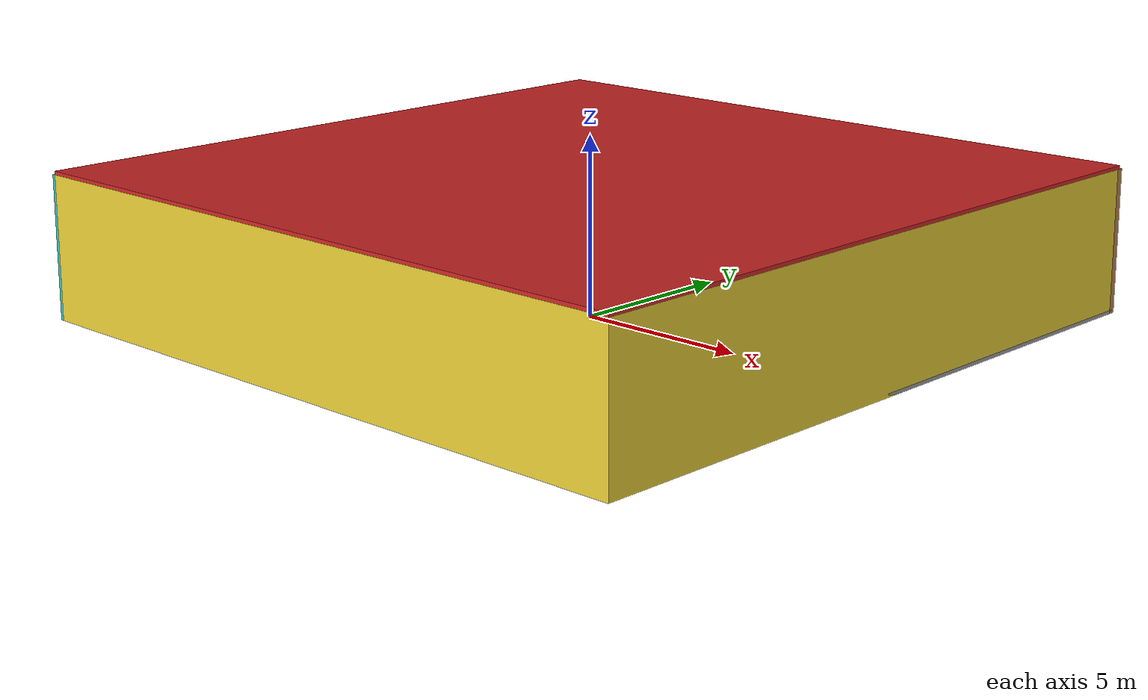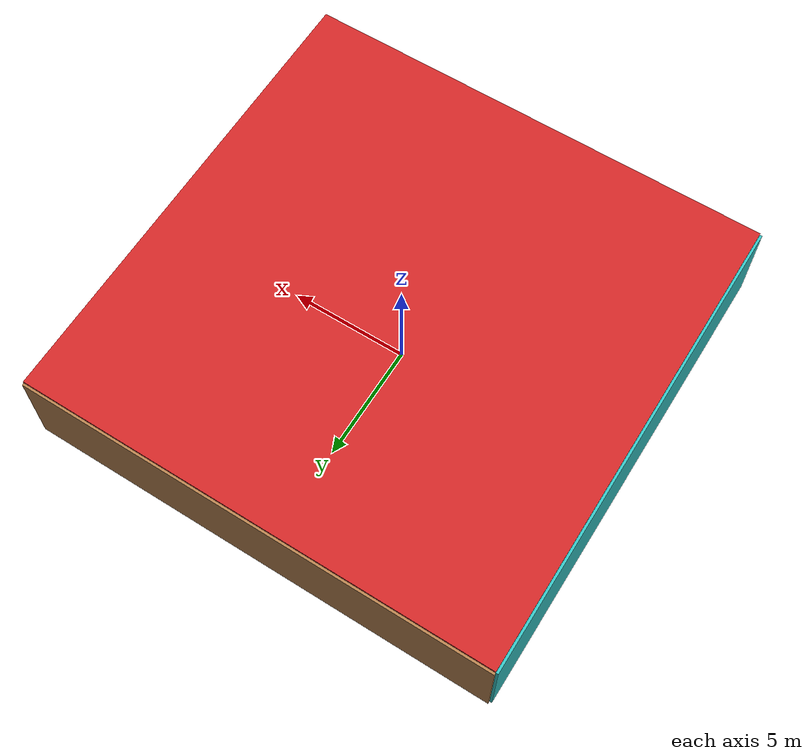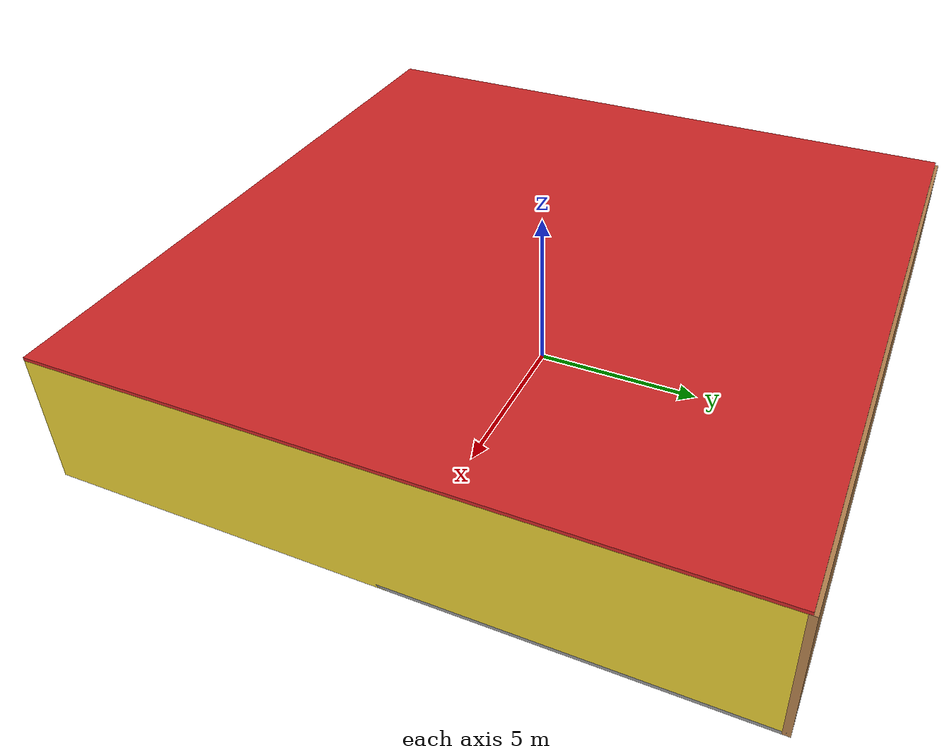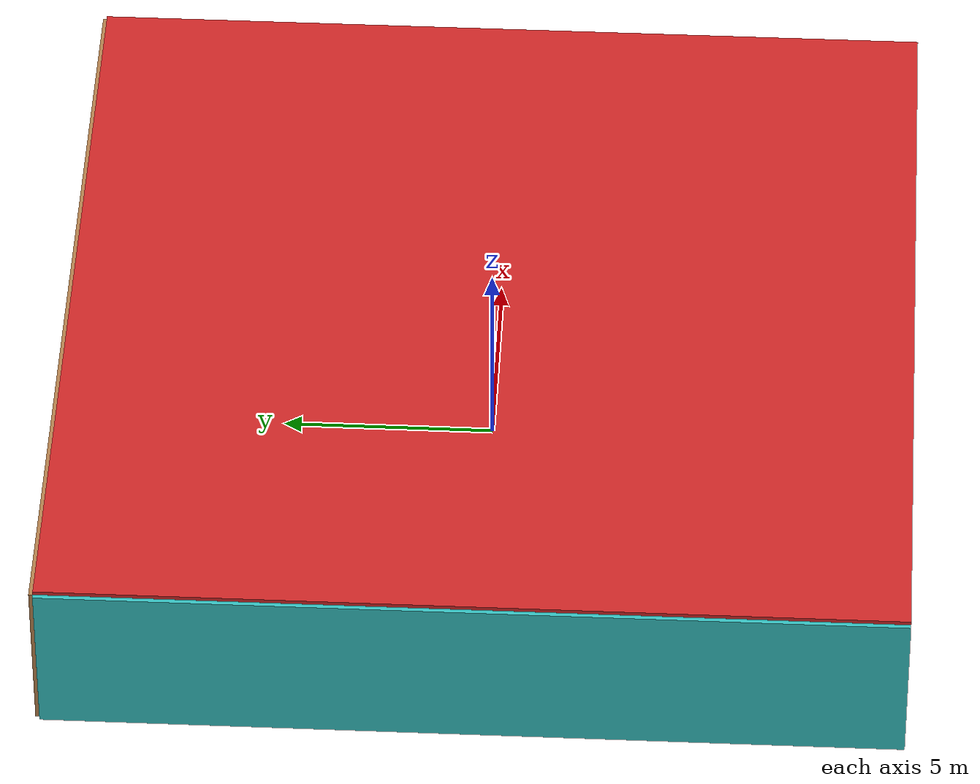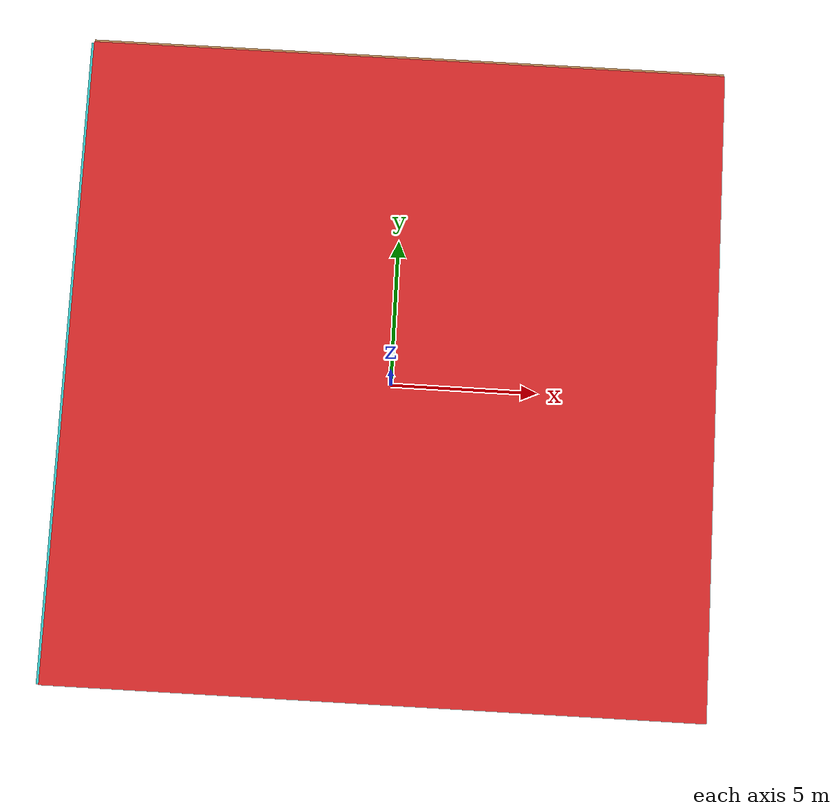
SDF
<sdf version="1.4">
 <world name="default">
  <physics type="ode">
   <max_step_size>0.001</max_step_size>
   <real_time_factor>1</real_time_factor>
   <real_time_update_rate>1000</real_time_update_rate>
   <gravity>0 0 -9.8</gravity>
  </physics>
  <scene><ambient>0.4 0.4 0.4 1</ambient><background>0.7 0.7 0.7 1</background><shadows>1</shadows></scene>
  <model name="Surrounding">
   <static>1</static>
   <link name="Ceiling">
    <collision name="Ceiling_Collision"><geometry><box><size>20 20 0.1</size></box></geometry></collision>
    <visual name="Ceiling_Visual">
     <geometry><box><size>20 20 0.1</size></box></geometry>
     <material>
      <script><uri>file://media/materials/scripts/gazebo.material</uri><name>Gazebo/Red</name></script>
     </material>
    </visual>
    <pose>0 0 4.05 0 0 0</pose>
   </link>
   <link name="Wall_South">
    <collision name="Wall_South_Collision">
     <geometry><box><size>20 0 4</size></box></geometry>
     <pose>0 0 2 0 -0 0</pose>
    </collision>
    <visual name="Wall_South_Visual">
     <pose>0 0 2 0 -0 0</pose>
     <geometry><box><size>20 0 4</size></box></geometry>
     <material>
      <script><uri>file://media/materials/scripts/gazebo.material</uri><name>Gazebo/ZincYellow</name></script>
     </material>
    </visual>
    <velocity_decay><linear>0</linear><angular>0</angular></velocity_decay>
    <pose>0 -10 0 0 -0 0</pose>
   </link>
   <link name="Wall_East">
    <collision name="Wall_21_Collision">
     <geometry><box><size>20 0 4</size></box></geometry>
     <pose>0 0 2 0 -0 0</pose>
    </collision>
    <visual name="Wall_21_Visual">
     <pose>0 0 2 0 -0 0</pose>
     <geometry><box><size>20 0 4</size></box></geometry>
     <material>
      <script><uri>file://media/materials/scripts/gazebo.material</uri><name>Gazebo/ZincYellow</name></script>
     </material>
    </visual>
    <velocity_decay><linear>0</linear><angular>0</angular></velocity_decay>
    <pose>10 0 0 0 -0 1.5708</pose>
   </link>
   <link name="Wall_North">
    <collision name="Wall_22_Collision">
     <geometry><box><size>20 0.2 4</size></box></geometry>
     <pose>0 0 2 0 -0 0</pose>
    </collision>
    <visual name="Wall_22_Visual">
     <pose>0 0 2 0 -0 0</pose>
     <geometry><box><size>20 0.2 4</size></box></geometry>
     <material>
      <script><uri>file://media/materials/scripts/gazebo.material</uri><name>Gazebo/WoodPallet</name></script>
     </material>
    </visual>
    <velocity_decay><linear>0</linear><angular>0</angular></velocity_decay>
    <pose>0 10 0 0 -0 0</pose>
   </link>
   <link name="Wall_West">
    <collision name="Wall_23_Collision">
     <geometry><box><size>20 0.2 4</size></box></geometry>
     <pose>0 0 2 0 -0 0</pose>
    </collision>
    <visual name="Wall_23_Visual">
     <pose>0 0 2 0 -0 0</pose>
     <geometry><box><size>20 0.2 4</size></box></geometry>
     <material>
      <script><uri>file://media/materials/scripts/gazebo.material</uri><name>Gazebo/Turquoise</name></script>
     </material>
    </visual>
    <velocity_decay><linear>0</linear><angular>0</angular></velocity_decay>
    <pose>-10 0 0 0 0 -1.5708</pose>
   </link>
   <link name="Ground_link">
    <collision name="collision">
     <pose>0 0 .05 0 -0 0</pose>
     <geometry><box><size>20 20 0.1</size></box></geometry>
    </collision>
    <visual name="visual">
     <pose>0 0 .05 0 -0 0</pose>
     <geometry><box><size>20 20 0.1</size></box></geometry>
     <material>
      <script><uri>file://media/materials/scripts/gazebo.material</uri><name>Gazebo/GreyGradientSky</name></script>
     </material>
    </visual>
   </link>
   <static>1</static>
  </model>
  <spherical_coordinates>
   <surface_model>EARTH_WGS84</surface_model>
   <latitude_deg>0</latitude_deg>
   <longitude_deg>0</longitude_deg>
   <elevation>0</elevation>
   <heading_deg>0</heading_deg>
  </spherical_coordinates>
  <light name="lightball_0" type="diffuse">
   <diffuse>0.8 0.8 0.8 1</diffuse>
   <specular>0.2 0.2 0.2 1</specular>
   <attenuation>
    <range>100</range>
    <constant>0.7</constant>
    <linear>0.01</linear>
    <quadratic>0.001</quadratic>
   </attenuation>
   <direction>-0.5 0.1 -0.9</direction>
   <pose>-6.74596499719 7.0939835951 1.74186587304 0 0 0</pose>
  </light>
  <light name="lightball_1" type="diffuse">
   <diffuse>0.8 0.8 0.8 1</diffuse>
   <specular>0.2 0.2 0.2 1</specular>
   <attenuation>
    <range>100</range>
    <constant>0.7</constant>
    <linear>0.01</linear>
    <quadratic>0.001</quadratic>
   </attenuation>
   <direction>-0.5 0.1 -0.9</direction>
   <pose>0.216246329349 -3.19590052375 0.528036767307 0 0 0</pose>
  </light>
  <light name="lightball_2" type="diffuse">
   <diffuse>0.8 0.8 0.8 1</diffuse>
   <specular>0.2 0.2 0.2 1</specular>
   <attenuation>
    <range>100</range>
    <constant>0.7</constant>
    <linear>0.01</linear>
    <quadratic>0.001</quadratic>
   </attenuation>
   <direction>-0.5 0.1 -0.9</direction>
   <pose>3.34600499335 -0.877910168714 3.71983160028 0 0 0</pose>
  </light>
  <light name="lightball_3" type="diffuse">
   <diffuse>0.8 0.8 0.8 1</diffuse>
   <specular>0.2 0.2 0.2 1</specular>
   <attenuation>
    <range>100</range>
    <constant>0.7</constant>
    <linear>0.01</linear>
    <quadratic>0.001</quadratic>
   </attenuation>
   <direction>-0.5 0.1 -0.9</direction>
   <pose>4.19455886061 -0.459145889218 1.92795915437 0 0 0</pose>
  </light>
  <light name="lightball_4" type="diffuse">
   <diffuse>0.8 0.8 0.8 1</diffuse>
   <specular>0.2 0.2 0.2 1</specular>
   <attenuation>
    <range>100</range>
    <constant>0.7</constant>
    <linear>0.01</linear>
    <quadratic>0.001</quadratic>
   </attenuation>
   <direction>-0.5 0.1 -0.9</direction>
   <pose>-0.543307424596 -6.28659284293 3.38626437197 0 0 0</pose>
  </light>
  <light name="lightball_5" type="diffuse">
   <diffuse>0.8 0.8 0.8 1</diffuse>
   <specular>0.2 0.2 0.2 1</specular>
   <attenuation>
    <range>100</range>
    <constant>0.7</constant>
    <linear>0.01</linear>
    <quadratic>0.001</quadratic>
   </attenuation>
   <direction>-0.5 0.1 -0.9</direction>
   <pose>0.730564925415 0.253126405376 1.0127948929 0 0 0</pose>
  </light>
  <light name="lightball_6" type="diffuse">
   <diffuse>0.8 0.8 0.8 1</diffuse>
   <specular>0.2 0.2 0.2 1</specular>
   <attenuation>
    <range>100</range>
    <constant>0.7</constant>
    <linear>0.01</linear>
    <quadratic>0.001</quadratic>
   </attenuation>
   <direction>-0.5 0.1 -0.9</direction>
   <pose>-4.3719873641 -2.71748039939 3.53135142344 0 0 0</pose>
  </light>
  <include><uri>model://cabinet</uri><pose>-7.2587011633 3.93349668785 0 0 0 2.89073112592</pose></include>
  <include><uri>model://cabinet</uri><pose>-4.0521655808 -7.10254788718 0 0 0 1.05863497008</pose></include>
  <include><uri>model://cabinet</uri><pose>-5.28509110025 6.72719490989 0 0 0 0.355127572363</pose></include>
 </world>
</sdf>

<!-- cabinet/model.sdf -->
<sdf version="1.5">
  <model name="cabinet">
    <static>true</static>
    <link name="cabinet_bottom_plate">
      <inertial>
        <pose>0 0 -1 0 0 0</pose>
        <inertia>
          <ixx>2.050000</ixx>
          <ixy>0</ixy>
          <ixz>0</ixz>
          <iyy>2.050000</iyy>
          <iyz>0</iyz>
          <izz>2.050000</izz>
        </inertia>
        <mass>25.000000</mass>
      </inertial>
      <collision name="cabinet_bottom_plate_geom">
        <pose>0 0 0.010000 0 0 0</pose>
        <geometry>
          <box>
            <size>0.450000 0.450000 0.020000</size>
          </box>
        </geometry>
      </collision>
      <visual name="cabinet_bottom_plate_geom_visual">
        <pose>0 0 0.010000 0 0 0</pose>
        <geometry>
          <box>
            <size>0.450000 0.450000 0.020000</size>
          </box>
        </geometry>
        <material>
          <script>
            <uri>model://media/materials/scripts/gazebo.material</uri>
            <name>Gazebo/Wood</name>
          </script>
        </material>
      </visual>
      <collision name="cabinet_bottom_plate_geom_cabinet_back_plate">
        <pose>0.235000 0 0.510000 0 0 0</pose>
        <geometry>
          <box>
            <size>0.020000 0.450000 1.020000</size>
          </box>
        </geometry>
      </collision>
      <visual name="cabinet_bottom_plate_geom_cabinet_back_plate_visual">
        <pose>0.235000 0 0.510000 0 0 0</pose>
        <geometry>
          <box>
            <size>0.020000 0.450000 1.020000</size>
          </box>
        </geometry>
        <material>
          <script>
            <uri>model://media/materials/scripts/gazebo.material</uri>
            <name>Gazebo/Wood</name>
          </script>
        </material>
      </visual>
      <collision name="cabinet_bottom_plate_geom_cabinet_left_plate">
        <pose>0 0.235000 0.510000 0 0 0</pose>
        <geometry>
          <box>
            <size>0.450000 0.020000 1.020000</size>
          </box>
        </geometry>
      </collision>
      <visual name="cabinet_bottom_plate_geom_cabinet_left_plate_visual">
        <pose>0 0.235000 0.510000 0 0 0</pose>
        <geometry>
          <box>
            <size>0.450000 0.020000 1.020000</size>
          </box>
        </geometry>
        <material>
          <script>
            <uri>model://media/materials/scripts/gazebo.material</uri>
            <name>Gazebo/Wood</name>
          </script>
        </material>
      </visual>
      <collision name="cabinet_bottom_plate_geom_cabinet_middle_plate">
        <pose>0 0 0.510000 0 0 0</pose>
        <geometry>
          <box>
            <size>0.450000 0.450000 0.020000</size>
          </box>
        </geometry>
      </collision>
      <visual name="cabinet_bottom_plate_geom_cabinet_middle_plate_visual">
        <pose>0 0 0.510000 0 0 0</pose>
        <geometry>
          <box>
            <size>0.450000 0.450000 0.020000</size>
          </box>
        </geometry>
        <material>
          <script>
            <uri>model://media/materials/scripts/gazebo.material</uri>
            <name>Gazebo/Wood</name>
          </script>
        </material>
      </visual>
      <collision name="cabinet_bottom_plate_geom_cabinet_right_plate">
        <pose>0 -0.235000 0.510000 0 0 0</pose>
        <geometry>
          <box>
            <size>0.450000 0.020000 1.020000</size>
          </box>
        </geometry>
      </collision>
      <visual name="cabinet_bottom_plate_geom_cabinet_right_plate_visual">
        <pose>0 -0.235000 0.510000 0 0 0</pose>
        <geometry>
          <box>
            <size>0.450000 0.020000 1.020000</size>
          </box>
        </geometry>
        <material>
          <script>
            <uri>model://media/materials/scripts/gazebo.material</uri>
            <name>Gazebo/Wood</name>
          </script>
        </material>
      </visual>
      <collision name="cabinet_bottom_plate_geom_cabinet_top_plate">
        <pose>0 0 1.010000 0 0 0</pose>
        <geometry>
          <box>
            <size>0.450000 0.450000 0.020000</size>
          </box>
        </geometry>
      </collision>
      <visual name="cabinet_bottom_plate_geom_cabinet_top_plate_visual">
        <pose>0 0 1.010000 0 0 0</pose>
        <geometry>
          <box>
            <size>0.450000 0.450000 0.020000</size>
          </box>
        </geometry>
        <material>
          <script>
            <uri>model://media/materials/scripts/gazebo.material</uri>
            <name>Gazebo/Wood</name>
          </script>
        </material>
      </visual>
    </link>
  </model>
</sdf>
